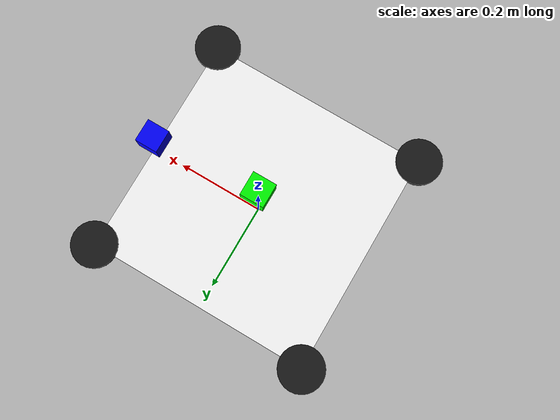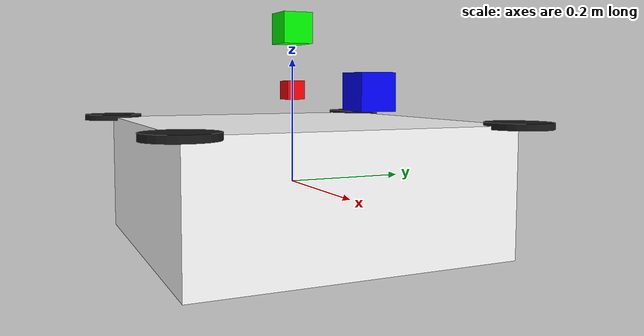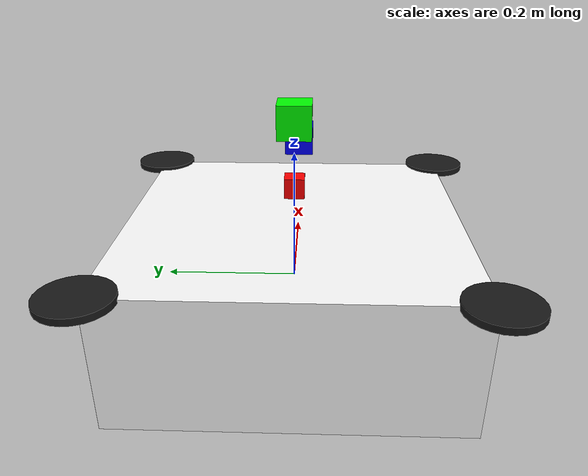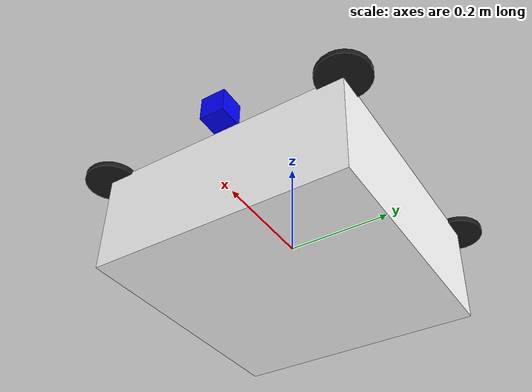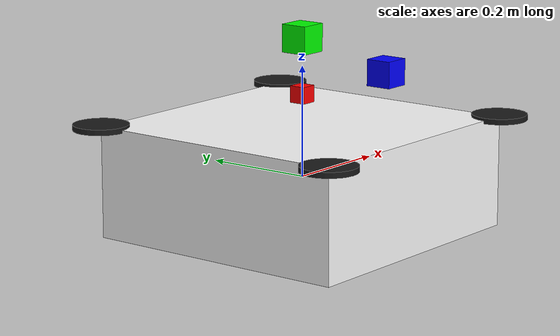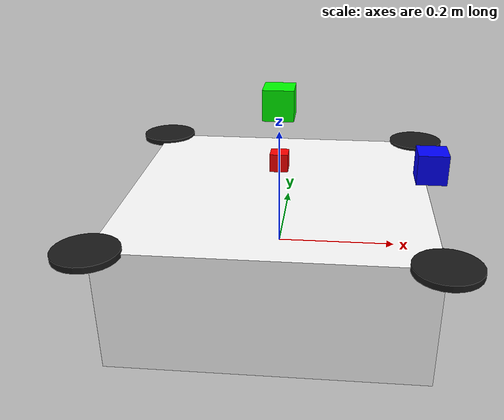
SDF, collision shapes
<?xml version="1.0"?>
<sdf version="1.8">
  <model name="inspectorbot">
    <static>false</static>
    <self_collide>false</self_collide>

    <!-- Base chassis -->
    <link name="base_link">
      <pose>0 0 0 0 0 0</pose>
      <inertial>
        <mass>2.0</mass>
        <inertia>
          <ixx>0.1</ixx>
          <ixy>0</ixy>
          <ixz>0</ixz>
          <iyy>0.1</iyy>
          <iyz>0</iyz>
          <izz>0.1</izz>
        </inertia>
      </inertial>

      <collision name="base_collision">
        <geometry>
          <box>
            <size>0.5 0.5 0.2</size>
          </box>
        </geometry>
      </collision>

      <visual name="base_visual">
        <!-- Referencing meshes by package API requires setting GZ_SIM_RESOURCE_PATH to the install directory-->
        <geometry>
          <mesh>
            <uri>package://models/inspectorbot/meshes/base_link.stl</uri>
            <scale>0.001 0.001 0.001</scale>
          </mesh>
        </geometry>
        <material>
          <ambient>1.0 1.0 1.0 1.0</ambient>
          <diffuse>1.0 1.0 1.0 1.0</diffuse>
        </material>
      </visual>
    </link>

    <!-- Front Left Propeller -->
    <link name="front_left_prop">
      <pose>0.25 0.25 0.1 0 0 0</pose>
      <inertial>
        <mass>0.1</mass>
        <inertia>
          <ixx>0.001</ixx>
          <ixy>0</ixy>
          <ixz>0</ixz>
          <iyy>0.001</iyy>
          <iyz>0</iyz>
          <izz>0.002</izz>
        </inertia>
      </inertial>

      <collision name="prop_collision">
        <geometry>
          <cylinder>
            <radius>0.05</radius>
            <length>0.01</length>
          </cylinder>
        </geometry>
      </collision>

      <visual name="prop_visual">
        <!-- Referencing meshes by package API requires setting GZ_SIM_RESOURCE_PATH to the install directory-->
        <geometry>
          <mesh>
            <uri>package://models/inspectorbot/meshes/propeller.stl</uri>
            <scale>0.001 0.001 0.001</scale>
          </mesh>
        </geometry>
        <material>
          <ambient>0.1 0.1 0.1 1.0</ambient>
          <diffuse>0.1 0.1 0.1 1.0</diffuse>
        </material>
      </visual>
    </link>

    <!-- Front Right Propeller -->
    <link name="front_right_prop">
      <pose>0.25 -0.25 0.1 0 0 0</pose>
      <inertial>
        <mass>0.1</mass>
        <inertia>
          <ixx>0.001</ixx>
          <ixy>0</ixy>
          <ixz>0</ixz>
          <iyy>0.001</iyy>
          <iyz>0</iyz>
          <izz>0.002</izz>
        </inertia>
      </inertial>

      <collision name="prop_collision">
        <geometry>
          <cylinder>
            <radius>0.05</radius>
            <length>0.01</length>
          </cylinder>
        </geometry>
      </collision>

      <visual name="prop_visual">
        <!-- Referencing meshes by package API requires setting GZ_SIM_RESOURCE_PATH to the install directory-->
        <geometry>
          <mesh>
            <uri>package://models/inspectorbot/meshes/propeller.stl</uri>
            <scale>0.001 0.001 0.001</scale>
          </mesh>
        </geometry>
        <material>
          <ambient>0.1 0.1 0.1 1.0</ambient>
          <diffuse>0.1 0.1 0.1 1.0</diffuse>
        </material>
      </visual>
    </link>

    <!-- Rear Left Propeller -->
    <link name="rear_left_prop">
      <pose>-0.25 0.25 0.1 0 0 0</pose>
      <inertial>
        <mass>0.1</mass>
        <inertia>
          <ixx>0.001</ixx>
          <ixy>0</ixy>
          <ixz>0</ixz>
          <iyy>0.001</iyy>
          <iyz>0</iyz>
          <izz>0.002</izz>
        </inertia>
      </inertial>

      <collision name="prop_collision">
        <geometry>
          <cylinder>
            <radius>0.05</radius>
            <length>0.01</length>
          </cylinder>
        </geometry>
      </collision>

      <visual name="prop_visual">
        <!-- Referencing meshes by package API requires setting GZ_SIM_RESOURCE_PATH to the install directory-->
        <geometry>
          <mesh>
            <uri>package://models/inspectorbot/meshes/propeller.stl</uri>
            <scale>0.001 0.001 0.001</scale>
          </mesh>
        </geometry>
        <material>
          <ambient>0.1 0.1 0.1 1.0</ambient>
          <diffuse>0.1 0.1 0.1 1.0</diffuse>
        </material>
      </visual>
    </link>

    <!-- Rear Right Propeller -->
    <link name="rear_right_prop">
      <pose>-0.25 -0.25 0.1 0 0 0</pose>
      <inertial>
        <mass>0.1</mass>
        <inertia>
          <ixx>0.001</ixx>
          <ixy>0</ixy>
          <ixz>0</ixz>
          <iyy>0.001</iyy>
          <iyz>0</iyz>
          <izz>0.002</izz>
        </inertia>
      </inertial>

      <collision name="prop_collision">
        <geometry>
          <cylinder>
            <radius>0.05</radius>
            <length>0.01</length>
          </cylinder>
        </geometry>
      </collision>

      <visual name="prop_visual">
        <!-- Referencing meshes by package API requires setting GZ_SIM_RESOURCE_PATH to the install directory-->
        <geometry>
          <mesh>
            <uri>package://models/inspectorbot/meshes/propeller.stl</uri>
            <scale>0.001 0.001 0.001</scale>
          </mesh>
        </geometry>
        <material>
          <ambient>0.1 0.1 0.1 1.0</ambient>
          <diffuse>0.1 0.1 0.1 1.0</diffuse>
        </material>
      </visual>
    </link>

    <!-- Camera Link -->
    <link name="camera_link">
      <pose>0.25 0 0.15 0 0 0</pose>
      <inertial>
        <mass>0.01</mass>
        <inertia>
          <ixx>0.00001</ixx>
          <ixy>0</ixy>
          <ixz>0</ixz>
          <iyy>0.00001</iyy>
          <iyz>0</iyz>
          <izz>0.00001</izz>
        </inertia>
      </inertial>

      <collision name="camera_collision">
        <geometry>
          <box>
            <size>0.05 0.05 0.05</size>
          </box>
        </geometry>
      </collision>

      <visual name="camera_visual">
        <geometry>
          <box>
            <size>0.05 0.05 0.05</size>
          </box>
        </geometry>
        <material>
          <ambient>0.0 0.0 1.0 1.0</ambient>
          <diffuse>0.0 0.0 1.0 1.0</diffuse>
        </material>
      </visual>

      <!-- Camera sensor -->
      <sensor name="camera" type="camera">
        <always_on>true</always_on>
        <update_rate>30</update_rate>
        <visualize>true</visualize>
        <camera>
          <horizontal_fov>1.047</horizontal_fov>
          <image>
            <width>1280</width>
            <height>720</height>
            <format>R8G8B8</format>
          </image>
          <clip>
            <near>0.1</near>
            <far>100</far>
          </clip>
          <noise>
            <type>gaussian</type>
            <mean>0.0</mean>
            <stddev>0.007</stddev>
          </noise>
        </camera>
      </sensor>
    </link>

    <!-- GPS Link -->
    <link name="gps_link">
      <pose>0 0 0.25 0 0 0</pose>
      <inertial>
        <mass>0.01</mass>
        <inertia>
          <ixx>0.00001</ixx>
          <ixy>0</ixy>
          <ixz>0</ixz>
          <iyy>0.00001</iyy>
          <iyz>0</iyz>
          <izz>0.00001</izz>
        </inertia>
      </inertial>

      <collision name="gps_collision">
        <geometry>
          <box>
            <size>0.05 0.05 0.05</size>
          </box>
        </geometry>
      </collision>

      <visual name="gps_visual">
        <geometry>
          <box>
            <size>0.05 0.05 0.05</size>
          </box>
        </geometry>
        <material>
          <ambient>0.0 1.0 0.0 1.0</ambient>
          <diffuse>0.0 1.0 0.0 1.0</diffuse>
        </material>
      </visual>

      <!-- GPS/NavSat sensor -->
      <sensor name="navsat" type="navsat">
        <always_on>true</always_on>
        <update_rate>10</update_rate>
        <navsat>
          <position_sensing>
            <horizontal>
              <noise type="gaussian">
                <mean>0.0</mean>
                <stddev>0.0002</stddev>
              </noise>
            </horizontal>
            <vertical>
              <noise type="gaussian">
                <mean>0.0</mean>
                <stddev>0.0002</stddev>
              </noise>
            </vertical>
          </position_sensing>
          <velocity_sensing>
            <horizontal>
              <noise type="gaussian">
                <mean>0.0</mean>
                <stddev>0.002</stddev>
              </noise>
            </horizontal>
            <vertical>
              <noise type="gaussian">
                <mean>0.0</mean>
                <stddev>0.002</stddev>
              </noise>
            </vertical>
          </velocity_sensing>
        </navsat>
      </sensor>
    </link>

    <!-- IMU Link -->
    <link name="imu_link">
      <pose>0 0 0.15 0 0 0</pose>
      <inertial>
        <mass>0.01</mass>
        <inertia>
          <ixx>0.00001</ixx>
          <ixy>0</ixy>
          <ixz>0</ixz>
          <iyy>0.00001</iyy>
          <iyz>0</iyz>
          <izz>0.00001</izz>
        </inertia>
      </inertial>

      <collision name="imu_collision">
        <geometry>
          <box>
            <size>0.03 0.03 0.03</size>
          </box>
        </geometry>
      </collision>

      <visual name="imu_visual">
        <geometry>
          <box>
            <size>0.03 0.03 0.03</size>
          </box>
        </geometry>
        <material>
          <ambient>1.0 0.0 0.0 1.0</ambient>
          <diffuse>1.0 0.0 0.0 1.0</diffuse>
        </material>
      </visual>

      <!-- IMU sensor -->
      <sensor name="imu" type="imu">
        <always_on>true</always_on>
        <update_rate>100</update_rate>
        <imu>
          <angular_velocity>
            <x>
              <noise type="gaussian">
                <mean>0.0</mean>
                <stddev>0.0002</stddev>
              </noise>
            </x>
            <y>
              <noise type="gaussian">
                <mean>0.0</mean>
                <stddev>0.0002</stddev>
              </noise>
            </y>
            <z>
              <noise type="gaussian">
                <mean>0.0</mean>
                <stddev>0.0002</stddev>
              </noise>
            </z>
          </angular_velocity>
          <linear_acceleration>
            <x>
              <noise type="gaussian">
                <mean>0.0</mean>
                <stddev>0.017</stddev>
              </noise>
            </x>
            <y>
              <noise type="gaussian">
                <mean>0.0</mean>
                <stddev>0.017</stddev>
              </noise>
            </y>
            <z>
              <noise type="gaussian">
                <mean>0.0</mean>
                <stddev>0.017</stddev>
              </noise>
            </z>
          </linear_acceleration>
        </imu>
      </sensor>
    </link>

    <!-- Joints -->
    <joint name="front_left_prop_joint" type="revolute">
      <parent>base_link</parent>
      <child>front_left_prop</child>
      <axis>
        <xyz>0 0 1</xyz>
        <limit>
          <lower>-1e16</lower>
          <upper>1e16</upper>
        </limit>
      </axis>
    </joint>

    <joint name="front_right_prop_joint" type="revolute">
      <parent>base_link</parent>
      <child>front_right_prop</child>
      <axis>
        <xyz>0 0 1</xyz>
        <limit>
          <lower>-1e16</lower>
          <upper>1e16</upper>
        </limit>
      </axis>
    </joint>

    <joint name="rear_left_prop_joint" type="revolute">
      <parent>base_link</parent>
      <child>rear_left_prop</child>
      <axis>
        <xyz>0 0 1</xyz>
        <limit>
          <lower>-1e16</lower>
          <upper>1e16</upper>
        </limit>
      </axis>
    </joint>

    <joint name="rear_right_prop_joint" type="revolute">
      <parent>base_link</parent>
      <child>rear_right_prop</child>
      <axis>
        <xyz>0 0 1</xyz>
        <limit>
          <lower>-1e16</lower>
          <upper>1e16</upper>
        </limit>
      </axis>
    </joint>

    <joint name="camera_joint" type="fixed">
      <parent>base_link</parent>
      <child>camera_link</child>
    </joint>

    <joint name="gps_joint" type="fixed">
      <parent>base_link</parent>
      <child>gps_link</child>
    </joint>

    <joint name="imu_joint" type="fixed">
      <parent>base_link</parent>
      <child>imu_link</child>
    </joint>

    <!-- Multicopter Control Plugin -->
    <plugin filename="libgz-sim-multicopter-motor-model-system.so"
            name="gz::sim::systems::MulticopterMotorModel">
      <robotNamespace>inspectorbot</robotNamespace>
      <jointName>front_left_prop_joint</jointName>
      <linkName>front_left_prop</linkName>
      <turningDirection>ccw</turningDirection>
      <timeConstantUp>0.0125</timeConstantUp>
      <timeConstantDown>0.025</timeConstantDown>
      <maxRotVelocity>1100</maxRotVelocity>
      <motorConstant>5.84e-06</motorConstant>
      <momentConstant>0.06</momentConstant>
      <commandSubTopic>command/motor_speed</commandSubTopic>
      <motorNumber>0</motorNumber>
      <rotorDragCoefficient>0.000175</rotorDragCoefficient>
      <rollingMomentCoefficient>1e-06</rollingMomentCoefficient>
      <motorSpeedPubTopic>motor_speed/0</motorSpeedPubTopic>
      <rotorVelocitySlowdownSim>10</rotorVelocitySlowdownSim>
    </plugin>

    <plugin filename="libgz-sim-multicopter-motor-model-system.so"
            name="gz::sim::systems::MulticopterMotorModel">
      <robotNamespace>inspectorbot</robotNamespace>
      <jointName>front_right_prop_joint</jointName>
      <linkName>front_right_prop</linkName>
      <turningDirection>cw</turningDirection>
      <timeConstantUp>0.0125</timeConstantUp>
      <timeConstantDown>0.025</timeConstantDown>
      <maxRotVelocity>1100</maxRotVelocity>
      <motorConstant>5.84e-06</motorConstant>
      <momentConstant>0.06</momentConstant>
      <commandSubTopic>command/motor_speed</commandSubTopic>
      <motorNumber>1</motorNumber>
      <rotorDragCoefficient>0.000175</rotorDragCoefficient>
      <rollingMomentCoefficient>1e-06</rollingMomentCoefficient>
      <motorSpeedPubTopic>motor_speed/1</motorSpeedPubTopic>
      <rotorVelocitySlowdownSim>10</rotorVelocitySlowdownSim>
    </plugin>

    <plugin filename="libgz-sim-multicopter-motor-model-system.so"
            name="gz::sim::systems::MulticopterMotorModel">
      <robotNamespace>inspectorbot</robotNamespace>
      <jointName>rear_left_prop_joint</jointName>
      <linkName>rear_left_prop</linkName>
      <turningDirection>cw</turningDirection>
      <timeConstantUp>0.0125</timeConstantUp>
      <timeConstantDown>0.025</timeConstantDown>
      <maxRotVelocity>1100</maxRotVelocity>
      <motorConstant>5.84e-06</motorConstant>
      <momentConstant>0.06</momentConstant>
      <commandSubTopic>command/motor_speed</commandSubTopic>
      <motorNumber>2</motorNumber>
      <rotorDragCoefficient>0.000175</rotorDragCoefficient>
      <rollingMomentCoefficient>1e-06</rollingMomentCoefficient>
      <motorSpeedPubTopic>motor_speed/2</motorSpeedPubTopic>
      <rotorVelocitySlowdownSim>10</rotorVelocitySlowdownSim>
    </plugin>

    <plugin filename="libgz-sim-multicopter-motor-model-system.so"
            name="gz::sim::systems::MulticopterMotorModel">
      <robotNamespace>inspectorbot</robotNamespace>
      <jointName>rear_right_prop_joint</jointName>
      <linkName>rear_right_prop</linkName>
      <turningDirection>ccw</turningDirection>
      <timeConstantUp>0.0125</timeConstantUp>
      <timeConstantDown>0.025</timeConstantDown>
      <maxRotVelocity>1100</maxRotVelocity>
      <motorConstant>5.84e-06</motorConstant>
      <momentConstant>0.06</momentConstant>
      <commandSubTopic>command/motor_speed</commandSubTopic>
      <motorNumber>3</motorNumber>
      <rotorDragCoefficient>0.000175</rotorDragCoefficient>
      <rollingMomentCoefficient>1e-06</rollingMomentCoefficient>
      <motorSpeedPubTopic>motor_speed/3</motorSpeedPubTopic>
      <rotorVelocitySlowdownSim>10</rotorVelocitySlowdownSim>
    </plugin>

    <!-- Multicopter Control System -->
    <plugin filename="libgz-sim-multicopter-control-system.so"
            name="gz::sim::systems::MulticopterVelocityControl">
      <robotNamespace>inspectorbot</robotNamespace>
      <commandSubTopic>cmd_vel</commandSubTopic>
      <enableSubTopic>enable</enableSubTopic>
      <comLinkName>base_link</comLinkName>
      <velocityGain>2.5 2.5 2.0</velocityGain>
      <attitudeGain>2.0 2.0 0.6</attitudeGain>
      <angularRateGain>0.4 0.4 0.2</angularRateGain>
      <maximumLinearAcceleration>2 2 2</maximumLinearAcceleration>
      <maximumLinearVelocity>5 5 3</maximumLinearVelocity>
      <maximumAngularVelocity>3 3 3</maximumAngularVelocity>
      <linearVelocityNoiseMean>0 0 0</linearVelocityNoiseMean>
      <linearVelocityNoiseStdDev>0.05 0.05 0.05</linearVelocityNoiseStdDev>
      <angularVelocityNoiseMean>0 0 0</angularVelocityNoiseMean>
      <angularVelocityNoiseStdDev>0.01 0.01 0.01</angularVelocityNoiseStdDev>
      <rotorConfiguration>
        <rotor>
          <jointName>front_left_prop_joint</jointName>
          <forceConstant>5.84e-06</forceConstant>
          <momentConstant>0.06</momentConstant>
          <direction>1</direction>
        </rotor>
        <rotor>
          <jointName>front_right_prop_joint</jointName>
          <forceConstant>5.84e-06</forceConstant>
          <momentConstant>0.06</momentConstant>
          <direction>-1</direction>
        </rotor>
        <rotor>
          <jointName>rear_left_prop_joint</jointName>
          <forceConstant>5.84e-06</forceConstant>
          <momentConstant>0.06</momentConstant>
          <direction>-1</direction>
        </rotor>
        <rotor>
          <jointName>rear_right_prop_joint</jointName>
          <forceConstant>5.84e-06</forceConstant>
          <momentConstant>0.06</momentConstant>
          <direction>1</direction>
        </rotor>
      </rotorConfiguration>
    </plugin>

  </model>
</sdf>
